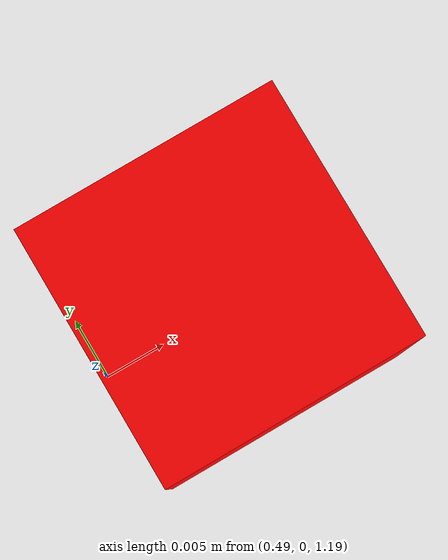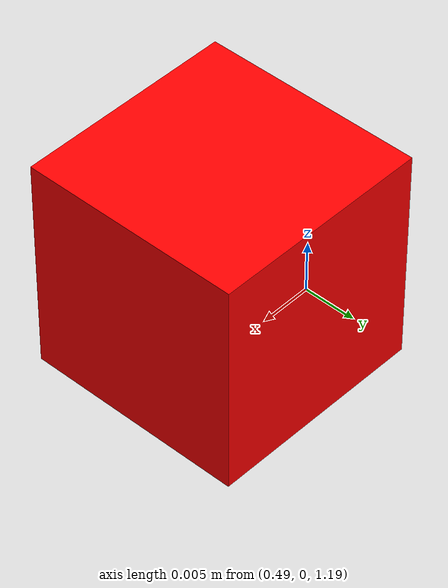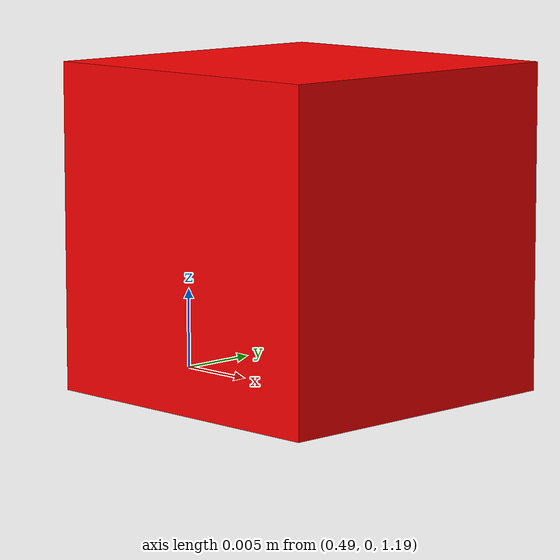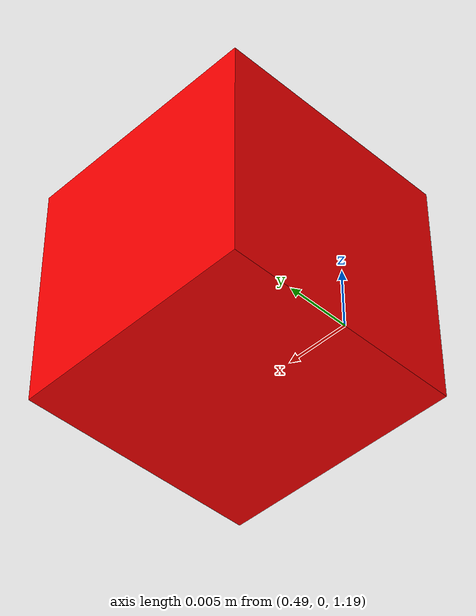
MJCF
<mujoco model="goal">
  <worldbody>
    <body>
      <body name="object">
        <geom pos="0.5 0 1.2" type="box" rgba="1 0 0 1" size="0.01 0.01 0.01" group="0"/>
      </body>
      <site rgba="0 0 0 0" size="0.005" pos="0 0 -0.05" name="bottom_site"/>
      <site rgba="0 0 0 0" size="0.005" pos="0 0 0.05" name="top_site"/>
      <site rgba="0 0 0 0" size="0.005" pos="0.05 0.05 0" name="horizontal_radius_site"/>
    </body>
  </worldbody>
</mujoco>
